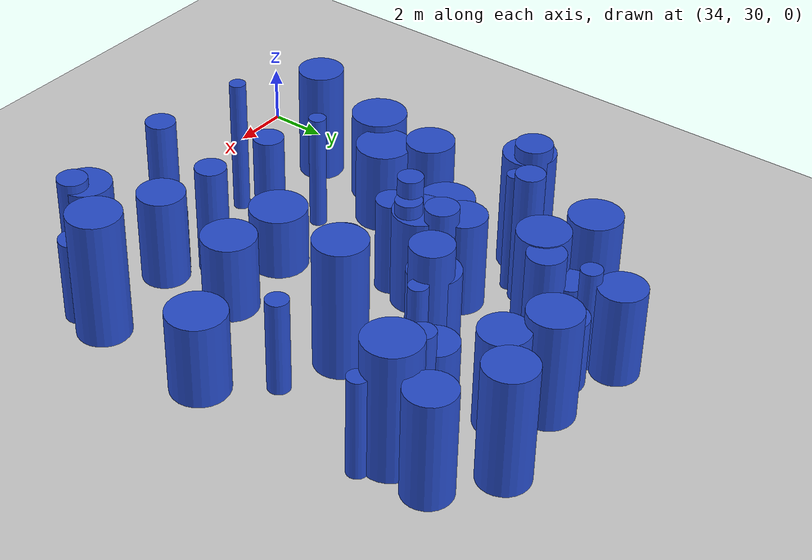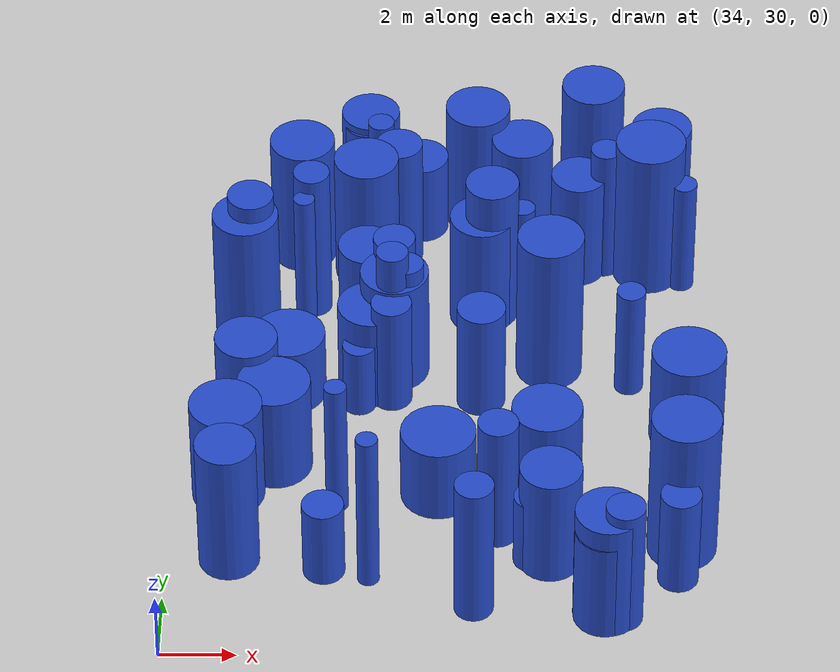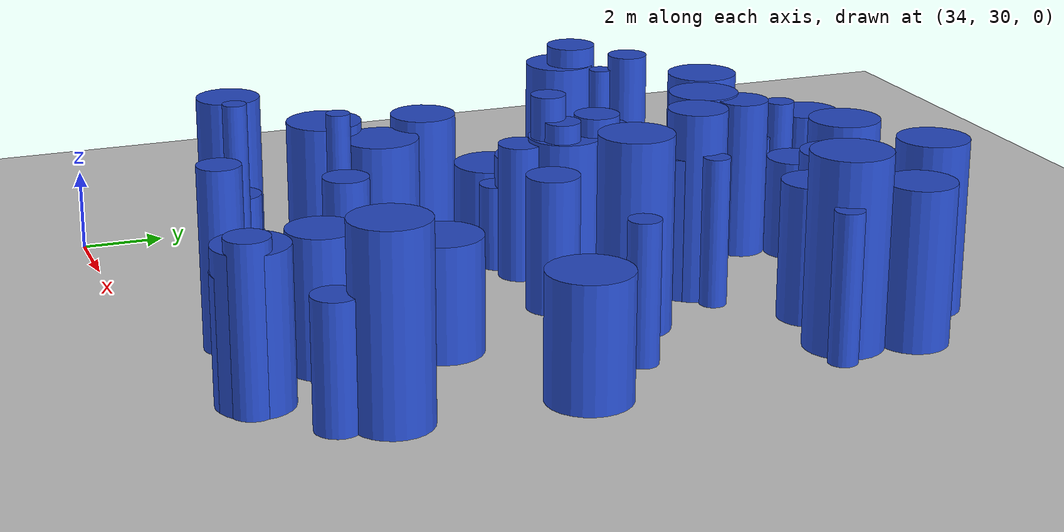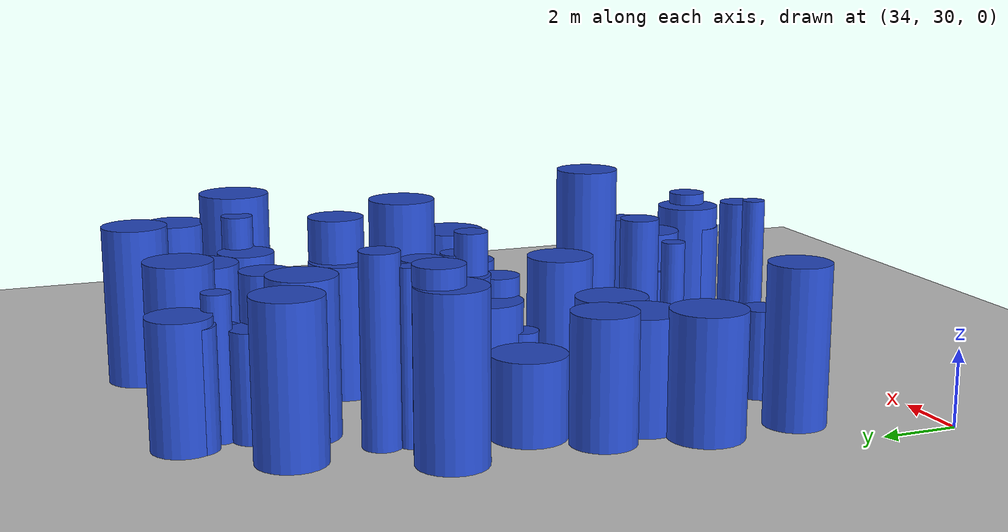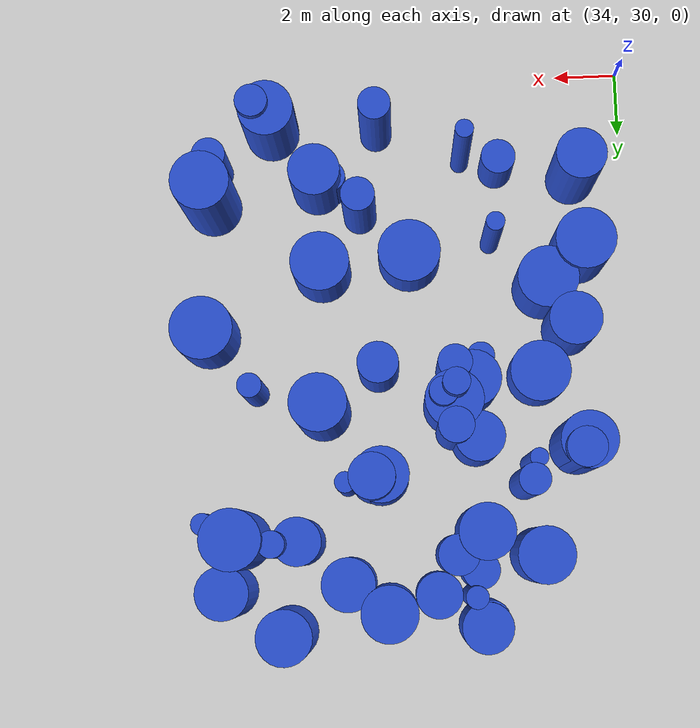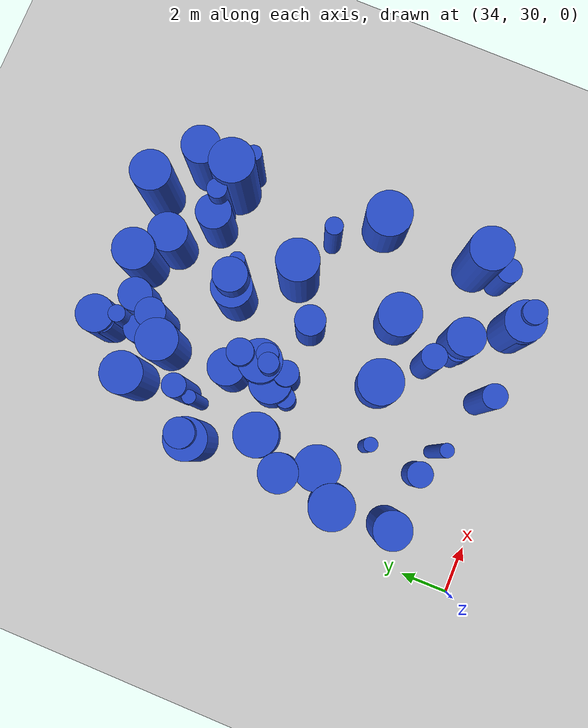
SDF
<sdf version="1.6">
 <world name="default">
  <model name="ground_plane">
   <static>1</static>
   <link name="link">
    <collision name="collision">
     <geometry><plane><normal>0 0 1</normal><size>100 100</size></plane></geometry>
     <surface><friction><ode><mu>100</mu><mu2>50</mu2></ode></friction></surface>
    </collision>
    <visual name="visual">
     <cast_shadows>0</cast_shadows>
     <geometry><plane><normal>0 0 1</normal><size>100 100</size></plane></geometry>
     <material>
      <script><uri>file://media/materials/scripts/gazebo.material</uri><name>Gazebo/Grey</name></script>
     </material>
    </visual>
   </link>
  </model>
  <model name="4">
   <static>0</static>
   <link name="link">
    <inertial>
     <mass>2</mass>
     <inertia>
      <ixx>0.982627</ixx>
      <ixy>0</ixy>
      <ixz>0</ixz>
      <iyy>0.982627</iyy>
      <iyz>0</iyz>
      <izz>0.248096</izz>
     </inertia>
    </inertial>
    <collision name="collision">
     <geometry><cylinder><length>2.26969</length><radius>0.498092</radius></cylinder></geometry>
     <surface><contact><collide_without_contact>1</collide_without_contact></contact></surface>
    </collision>
    <visual name="visual">
     <geometry><cylinder><length>2.26969</length><radius>0.498092</radius></cylinder></geometry>
     <material>
      <script><uri>file://media/materials/scripts/gazebo.material</uri><name>Gazebo/Blue</name></script>
     </material>
    </visual>
    <gravity>0</gravity>
   </link>
   <pose>43.5504 33.5469 1.13484 0 -0 0</pose>
  </model>
  <model name="7">
   <static>0</static>
   <link name="link">
    <inertial>
     <mass>2</mass>
     <inertia><ixx>3.06232</ixx><ixy>0</ixy><ixz>0</ixz><iyy>3.06232</iyy><iyz>0</iyz><izz>0.178257</izz></inertia>
    </inertial>
    <collision name="collision">
     <geometry><cylinder><length>4.22364</length><radius>0.422205</radius></cylinder></geometry>
     <surface><contact><collide_without_contact>1</collide_without_contact></contact></surface>
    </collision>
    <visual name="visual">
     <geometry><cylinder><length>4.22364</length><radius>0.422205</radius></cylinder></geometry>
     <material>
      <script><uri>file://media/materials/scripts/gazebo.material</uri><name>Gazebo/Blue</name></script>
     </material>
    </visual>
    <gravity>0</gravity>
   </link>
   <pose>45.6162 45.1561 2.11182 0 -0 0</pose>
  </model>
  <model name="19">
   <static>0</static>
   <link name="link">
    <inertial>
     <mass>2</mass>
     <inertia><ixx>1.7024</ixx><ixy>0</ixy><ixz>0</ixz><iyy>1.7024</iyy><iyz>0</iyz><izz>0.35835</izz></inertia>
    </inertial>
    <collision name="collision">
     <geometry><cylinder><length>3.02313</length><radius>0.598624</radius></cylinder></geometry>
     <surface><contact><collide_without_contact>1</collide_without_contact></contact></surface>
    </collision>
    <visual name="visual">
     <geometry><cylinder><length>3.02313</length><radius>0.598624</radius></cylinder></geometry>
     <material>
      <script><uri>file://media/materials/scripts/gazebo.material</uri><name>Gazebo/Blue</name></script>
     </material>
    </visual>
    <gravity>0</gravity>
   </link>
   <pose>39.0269 47.6818 1.51157 0 -0 0</pose>
  </model>
  <model name="32">
   <static>0</static>
   <link name="link">
    <inertial>
     <mass>2</mass>
     <inertia><ixx>1.31359</ixx><ixy>0</ixy><ixz>0</ixz><iyy>1.31359</iyy><iyz>0</iyz><izz>0.534164</izz></inertia>
    </inertial>
    <collision name="collision">
     <geometry><cylinder><length>2.5058</length><radius>0.730865</radius></cylinder></geometry>
     <surface><contact><collide_without_contact>1</collide_without_contact></contact></surface>
    </collision>
    <visual name="visual">
     <geometry><cylinder><length>2.5058</length><radius>0.730865</radius></cylinder></geometry>
     <material>
      <script><uri>file://media/materials/scripts/gazebo.material</uri><name>Gazebo/Blue</name></script>
     </material>
    </visual>
    <gravity>0</gravity>
   </link>
   <pose>40.5633 46.9048 1.2529 0 -0 0</pose>
  </model>
  <model name="38">
   <static>0</static>
   <link name="link">
    <inertial>
     <mass>2</mass>
     <inertia><ixx>1.64312</ixx><ixy>0</ixy><ixz>0</ixz><iyy>1.64312</iyy><iyz>0</iyz><izz>0.283464</izz></inertia>
    </inertial>
    <collision name="collision">
     <geometry><cylinder><length>3.00139</length><radius>0.532413</radius></cylinder></geometry>
     <surface><contact><collide_without_contact>1</collide_without_contact></contact></surface>
    </collision>
    <visual name="visual">
     <geometry><cylinder><length>3.00139</length><radius>0.532413</radius></cylinder></geometry>
     <material>
      <script><uri>file://media/materials/scripts/gazebo.material</uri><name>Gazebo/Blue</name></script>
     </material>
    </visual>
    <gravity>0</gravity>
   </link>
   <pose>47.3246 32.8651 1.50069 0 -0 0</pose>
  </model>
  <model name="45">
   <static>0</static>
   <link name="link">
    <inertial>
     <mass>2</mass>
     <inertia><ixx>2.26148</ixx><ixy>0</ixy><ixz>0</ixz><iyy>2.26148</iyy><iyz>0</iyz><izz>0.620996</izz></inertia>
    </inertial>
    <collision name="collision">
     <geometry><cylinder><length>3.42138</length><radius>0.788033</radius></cylinder></geometry>
     <surface><contact><collide_without_contact>1</collide_without_contact></contact></surface>
    </collision>
    <visual name="visual">
     <geometry><cylinder><length>3.42138</length><radius>0.788033</radius></cylinder></geometry>
     <material>
      <script><uri>file://media/materials/scripts/gazebo.material</uri><name>Gazebo/Blue</name></script>
     </material>
    </visual>
    <gravity>0</gravity>
   </link>
   <pose>39.1491 42.0776 1.71069 0 -0 0</pose>
  </model>
  <model name="56">
   <static>0</static>
   <link name="link">
    <inertial>
     <mass>2</mass>
     <inertia><ixx>1.44199</ixx><ixy>0</ixy><ixz>0</ixz><iyy>1.44199</iyy><iyz>0</iyz><izz>0.351917</izz></inertia>
    </inertial>
    <collision name="collision">
     <geometry><cylinder><length>2.75612</length><radius>0.593226</radius></cylinder></geometry>
     <surface><contact><collide_without_contact>1</collide_without_contact></contact></surface>
    </collision>
    <visual name="visual">
     <geometry><cylinder><length>2.75612</length><radius>0.593226</radius></cylinder></geometry>
     <material>
      <script><uri>file://media/materials/scripts/gazebo.material</uri><name>Gazebo/Blue</name></script>
     </material>
    </visual>
    <gravity>0</gravity>
   </link>
   <pose>39.2574 46.1786 1.37806 0 -0 0</pose>
  </model>
  <model name="62">
   <static>0</static>
   <link name="link">
    <inertial>
     <mass>2</mass>
     <inertia><ixx>1.99738</ixx><ixy>0</ixy><ixz>0</ixz><iyy>1.99738</iyy><iyz>0</iyz><izz>0.149019</izz></inertia>
    </inertial>
    <collision name="collision">
     <geometry><cylinder><length>3.39665</length><radius>0.38603</radius></cylinder></geometry>
     <surface><contact><collide_without_contact>1</collide_without_contact></contact></surface>
    </collision>
    <visual name="visual">
     <geometry><cylinder><length>3.39665</length><radius>0.38603</radius></cylinder></geometry>
     <material>
      <script><uri>file://media/materials/scripts/gazebo.material</uri><name>Gazebo/Blue</name></script>
     </material>
    </visual>
    <gravity>0</gravity>
   </link>
   <pose>46.2021 40.252 1.69832 0 -0 0</pose>
  </model>
  <model name="64">
   <static>0</static>
   <link name="link">
    <inertial>
     <mass>2</mass>
     <inertia><ixx>3.05171</ixx><ixy>0</ixy><ixz>0</ixz><iyy>3.05171</iyy><iyz>0</iyz><izz>0.774554</izz></inertia>
    </inertial>
    <collision name="collision">
     <geometry><cylinder><length>3.99833</length><radius>0.880087</radius></cylinder></geometry>
     <surface><contact><collide_without_contact>1</collide_without_contact></contact></surface>
    </collision>
    <visual name="visual">
     <geometry><cylinder><length>3.99833</length><radius>0.880087</radius></cylinder></geometry>
     <material>
      <script><uri>file://media/materials/scripts/gazebo.material</uri><name>Gazebo/Blue</name></script>
     </material>
    </visual>
    <gravity>0</gravity>
   </link>
   <pose>39.071 44.9999 1.99916 0 -0 0</pose>
  </model>
  <model name="80">
   <static>0</static>
   <link name="link">
    <inertial>
     <mass>2</mass>
     <inertia><ixx>3.9002</ixx><ixy>0</ixy><ixz>0</ixz><iyy>3.9002</iyy><iyz>0</iyz><izz>0.386485</izz></inertia>
    </inertial>
    <collision name="collision">
     <geometry><cylinder><length>4.71611</length><radius>0.621679</radius></cylinder></geometry>
     <surface><contact><collide_without_contact>1</collide_without_contact></contact></surface>
    </collision>
    <visual name="visual">
     <geometry><cylinder><length>4.71611</length><radius>0.621679</radius></cylinder></geometry>
     <material>
      <script><uri>file://media/materials/scripts/gazebo.material</uri><name>Gazebo/Blue</name></script>
     </material>
    </visual>
    <gravity>0</gravity>
   </link>
   <pose>36.0171 42.5943 2.35806 0 -0 0</pose>
  </model>
  <model name="84">
   <static>0</static>
   <link name="link">
    <inertial>
     <mass>2</mass>
     <inertia><ixx>1.19616</ixx><ixy>0</ixy><ixz>0</ixz><iyy>1.19616</iyy><iyz>0</iyz><izz>0.933302</izz></inertia>
    </inertial>
    <collision name="collision">
     <geometry><cylinder><length>2.09214</length><radius>0.966076</radius></cylinder></geometry>
     <surface><contact><collide_without_contact>1</collide_without_contact></contact></surface>
    </collision>
    <visual name="visual">
     <geometry><cylinder><length>2.09214</length><radius>0.966076</radius></cylinder></geometry>
     <material>
      <script><uri>file://media/materials/scripts/gazebo.material</uri><name>Gazebo/Blue</name></script>
     </material>
    </visual>
    <gravity>0</gravity>
   </link>
   <pose>37.0807 40.0005 1.04607 0 -0 0</pose>
  </model>
  <model name="86">
   <static>0</static>
   <link name="link">
    <inertial>
     <mass>2</mass>
     <inertia><ixx>3.85061</ixx><ixy>0</ixy><ixz>0</ixz><iyy>3.85061</iyy><iyz>0</iyz><izz>0.518978</izz></inertia>
    </inertial>
    <collision name="collision">
     <geometry><cylinder><length>4.64185</length><radius>0.720401</radius></cylinder></geometry>
     <surface><contact><collide_without_contact>1</collide_without_contact></contact></surface>
    </collision>
    <visual name="visual">
     <geometry><cylinder><length>4.64185</length><radius>0.720401</radius></cylinder></geometry>
     <material>
      <script><uri>file://media/materials/scripts/gazebo.material</uri><name>Gazebo/Blue</name></script>
     </material>
    </visual>
    <gravity>0</gravity>
   </link>
   <pose>42.5024 43.2263 2.32092 0 -0 0</pose>
  </model>
  <model name="98">
   <static>0</static>
   <link name="link">
    <inertial>
     <mass>2</mass>
     <inertia><ixx>1.86574</ixx><ixy>0</ixy><ixz>0</ixz><iyy>1.86574</iyy><iyz>0</iyz><izz>0.667431</izz></inertia>
    </inertial>
    <collision name="collision">
     <geometry><cylinder><length>3.03186</length><radius>0.816965</radius></cylinder></geometry>
     <surface><contact><collide_without_contact>1</collide_without_contact></contact></surface>
    </collision>
    <visual name="visual">
     <geometry><cylinder><length>3.03186</length><radius>0.816965</radius></cylinder></geometry>
     <material>
      <script><uri>file://media/materials/scripts/gazebo.material</uri><name>Gazebo/Blue</name></script>
     </material>
    </visual>
    <gravity>0</gravity>
   </link>
   <pose>45.397 31.5197 1.51593 0 -0 0</pose>
  </model>
  <model name="106">
   <static>0</static>
   <link name="link">
    <inertial>
     <mass>2</mass>
     <inertia><ixx>2.19954</ixx><ixy>0</ixy><ixz>0</ixz><iyy>2.19954</iyy><iyz>0</iyz><izz>0.11993</izz></inertia>
    </inertial>
    <collision name="collision">
     <geometry><cylinder><length>3.58294</length><radius>0.346309</radius></cylinder></geometry>
     <surface><contact><collide_without_contact>1</collide_without_contact></contact></surface>
    </collision>
    <visual name="visual">
     <geometry><cylinder><length>3.58294</length><radius>0.346309</radius></cylinder></geometry>
     <material>
      <script><uri>file://media/materials/scripts/gazebo.material</uri><name>Gazebo/Blue</name></script>
     </material>
    </visual>
    <gravity>0</gravity>
   </link>
   <pose>47.7338 44.4726 1.79147 0 -0 0</pose>
  </model>
  <model name="110">
   <static>0</static>
   <link name="link">
    <inertial>
     <mass>2</mass>
     <inertia><ixx>2.75029</ixx><ixy>0</ixy><ixz>0</ixz><iyy>2.75029</iyy><iyz>0</iyz><izz>0.287407</izz></inertia>
    </inertial>
    <collision name="collision">
     <geometry><cylinder><length>3.95468</length><radius>0.536104</radius></cylinder></geometry>
     <surface><contact><collide_without_contact>1</collide_without_contact></contact></surface>
    </collision>
    <visual name="visual">
     <geometry><cylinder><length>3.95468</length><radius>0.536104</radius></cylinder></geometry>
     <material>
      <script><uri>file://media/materials/scripts/gazebo.material</uri><name>Gazebo/Blue</name></script>
     </material>
    </visual>
    <gravity>0</gravity>
   </link>
   <pose>42.6495 34.504 1.97734 0 -0 0</pose>
  </model>
  <model name="114">
   <static>0</static>
   <link name="link">
    <inertial>
     <mass>2</mass>
     <inertia><ixx>2.29436</ixx><ixy>0</ixy><ixz>0</ixz><iyy>2.29436</iyy><iyz>0</iyz><izz>0.108501</izz></inertia>
    </inertial>
    <collision name="collision">
     <geometry><cylinder><length>3.66615</length><radius>0.329394</radius></cylinder></geometry>
     <surface><contact><collide_without_contact>1</collide_without_contact></contact></surface>
    </collision>
    <visual name="visual">
     <geometry><cylinder><length>3.66615</length><radius>0.329394</radius></cylinder></geometry>
     <material>
      <script><uri>file://media/materials/scripts/gazebo.material</uri><name>Gazebo/Blue</name></script>
     </material>
    </visual>
    <gravity>0</gravity>
   </link>
   <pose>43.338 43.3503 1.83308 0 -0 0</pose>
  </model>
  <model name="128">
   <static>0</static>
   <link name="link">
    <inertial>
     <mass>2</mass>
     <inertia><ixx>3.56373</ixx><ixy>0</ixy><ixz>0</ixz><iyy>3.56373</iyy><iyz>0</iyz><izz>0.183806</izz></inertia>
    </inertial>
    <collision name="collision">
     <geometry><cylinder><length>4.56409</length><radius>0.428726</radius></cylinder></geometry>
     <surface><contact><collide_without_contact>1</collide_without_contact></contact></surface>
    </collision>
    <visual name="visual">
     <geometry><cylinder><length>4.56409</length><radius>0.428726</radius></cylinder></geometry>
     <material>
      <script><uri>file://media/materials/scripts/gazebo.material</uri><name>Gazebo/Blue</name></script>
     </material>
    </visual>
    <gravity>0</gravity>
   </link>
   <pose>39.8452 40.467 2.28205 0 -0 0</pose>
  </model>
  <model name="130">
   <static>0</static>
   <link name="link">
    <inertial>
     <mass>2</mass>
     <inertia><ixx>2.81294</ixx><ixy>0</ixy><ixz>0</ixz><iyy>2.81294</iyy><iyz>0</iyz><izz>0.682512</izz></inertia>
    </inertial>
    <collision name="collision">
     <geometry><cylinder><length>3.85099</length><radius>0.826143</radius></cylinder></geometry>
     <surface><contact><collide_without_contact>1</collide_without_contact></contact></surface>
    </collision>
    <visual name="visual">
     <geometry><cylinder><length>3.85099</length><radius>0.826143</radius></cylinder></geometry>
     <material>
      <script><uri>file://media/materials/scripts/gazebo.material</uri><name>Gazebo/Blue</name></script>
     </material>
    </visual>
    <gravity>0</gravity>
   </link>
   <pose>47.1678 46.577 1.92549 0 -0 0</pose>
  </model>
  <model name="141">
   <static>0</static>
   <link name="link">
    <inertial>
     <mass>2</mass>
     <inertia><ixx>3.32043</ixx><ixy>0</ixy><ixz>0</ixz><iyy>3.32043</iyy><iyz>0</iyz><izz>0.743493</izz></inertia>
    </inertial>
    <collision name="collision">
     <geometry><cylinder><length>4.2062</length><radius>0.86226</radius></cylinder></geometry>
     <surface><contact><collide_without_contact>1</collide_without_contact></contact></surface>
    </collision>
    <visual name="visual">
     <geometry><cylinder><length>4.2062</length><radius>0.86226</radius></cylinder></geometry>
     <material>
      <script><uri>file://media/materials/scripts/gazebo.material</uri><name>Gazebo/Blue</name></script>
     </material>
    </visual>
    <gravity>0</gravity>
   </link>
   <pose>45.3041 47.9549 2.1031 0 -0 0</pose>
  </model>
  <model name="155">
   <static>0</static>
   <link name="link">
    <inertial>
     <mass>2</mass>
     <inertia><ixx>2.14576</ixx><ixy>0</ixy><ixz>0</ixz><iyy>2.14576</iyy><iyz>0</iyz><izz>0.670483</izz></inertia>
    </inertial>
    <collision name="collision">
     <geometry><cylinder><length>3.29592</length><radius>0.81883</radius></cylinder></geometry>
     <surface><contact><collide_without_contact>1</collide_without_contact></contact></surface>
    </collision>
    <visual name="visual">
     <geometry><cylinder><length>3.29592</length><radius>0.81883</radius></cylinder></geometry>
     <material>
      <script><uri>file://media/materials/scripts/gazebo.material</uri><name>Gazebo/Blue</name></script>
     </material>
    </visual>
    <gravity>0</gravity>
   </link>
   <pose>44.0083 33.5307 1.64796 0 -0 0</pose>
  </model>
  <model name="160">
   <static>0</static>
   <link name="link">
    <inertial>
     <mass>2</mass>
     <inertia><ixx>2.44797</ixx><ixy>0</ixy><ixz>0</ixz><iyy>2.44797</iyy><iyz>0</iyz><izz>0.847195</izz></inertia>
    </inertial>
    <collision name="collision">
     <geometry><cylinder><length>3.48514</length><radius>0.920432</radius></cylinder></geometry>
     <surface><contact><collide_without_contact>1</collide_without_contact></contact></surface>
    </collision>
    <visual name="visual">
     <geometry><cylinder><length>3.48514</length><radius>0.920432</radius></cylinder></geometry>
     <material>
      <script><uri>file://media/materials/scripts/gazebo.material</uri><name>Gazebo/Blue</name></script>
     </material>
    </visual>
    <gravity>0</gravity>
   </link>
   <pose>39.8909 40.9021 1.74257 0 -0 0</pose>
  </model>
  <model name="188">
   <static>0</static>
   <link name="link">
    <inertial>
     <mass>2</mass>
     <inertia><ixx>3.04092</ixx><ixy>0</ixy><ixz>0</ixz><iyy>3.04092</iyy><iyz>0</iyz><izz>0.786002</izz></inertia>
    </inertial>
    <collision name="collision">
     <geometry><cylinder><length>3.98592</length><radius>0.886567</radius></cylinder></geometry>
     <surface><contact><collide_without_contact>1</collide_without_contact></contact></surface>
    </collision>
    <visual name="visual">
     <geometry><cylinder><length>3.98592</length><radius>0.886567</radius></cylinder></geometry>
     <material>
      <script><uri>file://media/materials/scripts/gazebo.material</uri><name>Gazebo/Blue</name></script>
     </material>
    </visual>
    <gravity>0</gravity>
   </link>
   <pose>37.3091 45.7782 1.99296 0 -0 0</pose>
  </model>
  <model name="189">
   <static>0</static>
   <link name="link">
    <inertial>
     <mass>2</mass>
     <inertia><ixx>2.71953</ixx><ixy>0</ixy><ixz>0</ixz><iyy>2.71953</iyy><iyz>0</iyz><izz>0.207124</izz></inertia>
    </inertial>
    <collision name="collision">
     <geometry><cylinder><length>3.96179</length><radius>0.455108</radius></cylinder></geometry>
     <surface><contact><collide_without_contact>1</collide_without_contact></contact></surface>
    </collision>
    <visual name="visual">
     <geometry><cylinder><length>3.96179</length><radius>0.455108</radius></cylinder></geometry>
     <material>
      <script><uri>file://media/materials/scripts/gazebo.material</uri><name>Gazebo/Blue</name></script>
     </material>
    </visual>
    <gravity>0</gravity>
   </link>
   <pose>40.2209 40.6926 1.9809 0 -0 0</pose>
  </model>
  <model name="212">
   <static>0</static>
   <link name="link">
    <inertial>
     <mass>2</mass>
     <inertia><ixx>2.06459</ixx><ixy>0</ixy><ixz>0</ixz><iyy>2.06459</iyy><iyz>0</iyz><izz>0.294877</izz></inertia>
    </inertial>
    <collision name="collision">
     <geometry><cylinder><length>3.3916</length><radius>0.543026</radius></cylinder></geometry>
     <surface><contact><collide_without_contact>1</collide_without_contact></contact></surface>
    </collision>
    <visual name="visual">
     <geometry><cylinder><length>3.3916</length><radius>0.543026</radius></cylinder></geometry>
     <material>
      <script><uri>file://media/materials/scripts/gazebo.material</uri><name>Gazebo/Blue</name></script>
     </material>
    </visual>
    <gravity>0</gravity>
   </link>
   <pose>39.8224 39.7475 1.6958 0 -0 0</pose>
  </model>
  <model name="217">
   <static>0</static>
   <link name="link">
    <inertial>
     <mass>2</mass>
     <inertia><ixx>1.95959</ixx><ixy>0</ixy><ixz>0</ixz><iyy>1.95959</iyy><iyz>0</iyz><izz>0.990293</izz></inertia>
    </inertial>
    <collision name="collision">
     <geometry><cylinder><length>2.96423</length><radius>0.995135</radius></cylinder></geometry>
     <surface><contact><collide_without_contact>1</collide_without_contact></contact></surface>
    </collision>
    <visual name="visual">
     <geometry><cylinder><length>2.96423</length><radius>0.995135</radius></cylinder></geometry>
     <material>
      <script><uri>file://media/materials/scripts/gazebo.material</uri><name>Gazebo/Blue</name></script>
     </material>
    </visual>
    <gravity>0</gravity>
   </link>
   <pose>47.697 38.3504 1.48211 0 -0 0</pose>
  </model>
  <model name="218">
   <static>0</static>
   <link name="link">
    <inertial>
     <mass>2</mass>
     <inertia><ixx>2.73257</ixx><ixy>0</ixy><ixz>0</ixz><iyy>2.73257</iyy><iyz>0</iyz><izz>0.265062</izz></inertia>
    </inertial>
    <collision name="collision">
     <geometry><cylinder><length>3.94971</length><radius>0.514842</radius></cylinder></geometry>
     <surface><contact><collide_without_contact>1</collide_without_contact></contact></surface>
    </collision>
    <visual name="visual">
     <geometry><cylinder><length>3.94971</length><radius>0.514842</radius></cylinder></geometry>
     <material>
      <script><uri>file://media/materials/scripts/gazebo.material</uri><name>Gazebo/Blue</name></script>
     </material>
    </visual>
    <gravity>0</gravity>
   </link>
   <pose>45.8644 31.4262 1.97486 0 -0 0</pose>
  </model>
  <model name="224">
   <static>0</static>
   <link name="link">
    <inertial>
     <mass>2</mass>
     <inertia><ixx>2.1143</ixx><ixy>0</ixy><ixz>0</ixz><iyy>2.1143</iyy><iyz>0</iyz><izz>0.699634</izz></inertia>
    </inertial>
    <collision name="collision">
     <geometry><cylinder><length>3.25375</length><radius>0.836441</radius></cylinder></geometry>
     <surface><contact><collide_without_contact>1</collide_without_contact></contact></surface>
    </collision>
    <visual name="visual">
     <geometry><cylinder><length>3.25375</length><radius>0.836441</radius></cylinder></geometry>
     <material>
      <script><uri>file://media/materials/scripts/gazebo.material</uri><name>Gazebo/Blue</name></script>
     </material>
    </visual>
    <gravity>0</gravity>
   </link>
   <pose>36.009 38.5127 1.62688 0 -0 0</pose>
  </model>
  <model name="251">
   <static>0</static>
   <link name="link">
    <inertial>
     <mass>2</mass>
     <inertia><ixx>2.45021</ixx><ixy>0</ixy><ixz>0</ixz><iyy>2.45021</iyy><iyz>0</iyz><izz>0.767887</izz></inertia>
    </inertial>
    <collision name="collision">
     <geometry><cylinder><length>3.52102</length><radius>0.876292</radius></cylinder></geometry>
     <surface><contact><collide_without_contact>1</collide_without_contact></contact></surface>
    </collision>
    <visual name="visual">
     <geometry><cylinder><length>3.52102</length><radius>0.876292</radius></cylinder></geometry>
     <material>
      <script><uri>file://media/materials/scripts/gazebo.material</uri><name>Gazebo/Blue</name></script>
     </material>
    </visual>
    <gravity>0</gravity>
   </link>
   <pose>42.2374 43.146 1.76051 0 -0 0</pose>
  </model>
  <model name="258">
   <static>0</static>
   <link name="link">
    <inertial>
     <mass>2</mass>
     <inertia><ixx>1.81375</ixx><ixy>0</ixy><ixz>0</ixz><iyy>1.81375</iyy><iyz>0</iyz><izz>0.805404</izz></inertia>
    </inertial>
    <collision name="collision">
     <geometry><cylinder><length>2.90969</length><radius>0.897443</radius></cylinder></geometry>
     <surface><contact><collide_without_contact>1</collide_without_contact></contact></surface>
    </collision>
    <visual name="visual">
     <geometry><cylinder><length>2.90969</length><radius>0.897443</radius></cylinder></geometry>
     <material>
      <script><uri>file://media/materials/scripts/gazebo.material</uri><name>Gazebo/Blue</name></script>
     </material>
    </visual>
    <gravity>0</gravity>
   </link>
   <pose>39.2709 40.2366 1.45484 0 -0 0</pose>
  </model>
  <model name="259">
   <static>0</static>
   <link name="link">
    <inertial>
     <mass>2</mass>
     <inertia><ixx>3.1102</ixx><ixy>0</ixy><ixz>0</ixz><iyy>3.1102</iyy><iyz>0</iyz><izz>0.630883</izz></inertia>
    </inertial>
    <collision name="collision">
     <geometry><cylinder><length>4.09494</length><radius>0.794282</radius></cylinder></geometry>
     <surface><contact><collide_without_contact>1</collide_without_contact></contact></surface>
    </collision>
    <visual name="visual">
     <geometry><cylinder><length>4.09494</length><radius>0.794282</radius></cylinder></geometry>
     <material>
      <script><uri>file://media/materials/scripts/gazebo.material</uri><name>Gazebo/Blue</name></script>
     </material>
    </visual>
    <gravity>0</gravity>
   </link>
   <pose>35.6799 33.5083 2.04747 0 -0 0</pose>
  </model>
  <model name="263">
   <static>0</static>
   <link name="link">
    <inertial>
     <mass>2</mass>
     <inertia>
      <ixx>2.98518</ixx>
      <ixy>0</ixy>
      <ixz>0</ixz>
      <iyy>2.98518</iyy>
      <iyz>0</iyz>
      <izz>0.0874013</izz>
     </inertia>
    </inertial>
    <collision name="collision">
     <geometry><cylinder><length>4.20106</length><radius>0.295637</radius></cylinder></geometry>
     <surface><contact><collide_without_contact>1</collide_without_contact></contact></surface>
    </collision>
    <visual name="visual">
     <geometry><cylinder><length>4.20106</length><radius>0.295637</radius></cylinder></geometry>
     <material>
      <script><uri>file://media/materials/scripts/gazebo.material</uri><name>Gazebo/Blue</name></script>
     </material>
    </visual>
    <gravity>0</gravity>
   </link>
   <pose>38.4391 35.5606 2.10053 0 -0 0</pose>
  </model>
  <model name="269">
   <static>0</static>
   <link name="link">
    <inertial>
     <mass>2</mass>
     <inertia><ixx>3.28833</ixx><ixy>0</ixy><ixz>0</ixz><iyy>3.28833</iyy><iyz>0</iyz><izz>0.263607</izz></inertia>
    </inertial>
    <collision name="collision">
     <geometry><cylinder><length>4.35192</length><radius>0.513427</radius></cylinder></geometry>
     <surface><contact><collide_without_contact>1</collide_without_contact></contact></surface>
    </collision>
    <visual name="visual">
     <geometry><cylinder><length>4.35192</length><radius>0.513427</radius></cylinder></geometry>
     <material>
      <script><uri>file://media/materials/scripts/gazebo.material</uri><name>Gazebo/Blue</name></script>
     </material>
    </visual>
    <gravity>0</gravity>
   </link>
   <pose>42.036 31.7652 2.17596 0 -0 0</pose>
  </model>
  <model name="281">
   <static>0</static>
   <link name="link">
    <inertial>
     <mass>2</mass>
     <inertia><ixx>4.06047</ixx><ixy>0</ixy><ixz>0</ixz><iyy>4.06047</iyy><iyz>0</iyz><izz>0.797601</izz></inertia>
    </inertial>
    <collision name="collision">
     <geometry><cylinder><length>4.68722</length><radius>0.893085</radius></cylinder></geometry>
     <surface><contact><collide_without_contact>1</collide_without_contact></contact></surface>
    </collision>
    <visual name="visual">
     <geometry><cylinder><length>4.68722</length><radius>0.893085</radius></cylinder></geometry>
     <material>
      <script><uri>file://media/materials/scripts/gazebo.material</uri><name>Gazebo/Blue</name></script>
     </material>
    </visual>
    <gravity>0</gravity>
   </link>
   <pose>44.0541 40.9655 2.34361 0 -0 0</pose>
  </model>
  <model name="283">
   <static>0</static>
   <link name="link">
    <inertial>
     <mass>2</mass>
     <inertia><ixx>2.28744</ixx><ixy>0</ixy><ixz>0</ixz><iyy>2.28744</iyy><iyz>0</iyz><izz>0.127832</izz></inertia>
    </inertial>
    <collision name="collision">
     <geometry><cylinder><length>3.65255</length><radius>0.357536</radius></cylinder></geometry>
     <surface><contact><collide_without_contact>1</collide_without_contact></contact></surface>
    </collision>
    <visual name="visual">
     <geometry><cylinder><length>3.65255</length><radius>0.357536</radius></cylinder></geometry>
     <material>
      <script><uri>file://media/materials/scripts/gazebo.material</uri><name>Gazebo/Blue</name></script>
     </material>
    </visual>
    <gravity>0</gravity>
   </link>
   <pose>39.4447 46.9832 1.82628 0 -0 0</pose>
  </model>
  <model name="302">
   <static>0</static>
   <link name="link">
    <inertial>
     <mass>2</mass>
     <inertia><ixx>1.92859</ixx><ixy>0</ixy><ixz>0</ixz><iyy>1.92859</iyy><iyz>0</iyz><izz>0.943552</izz></inertia>
    </inertial>
    <collision name="collision">
     <geometry><cylinder><length>2.9565</length><radius>0.971366</radius></cylinder></geometry>
     <surface><contact><collide_without_contact>1</collide_without_contact></contact></surface>
    </collision>
    <visual name="visual">
     <geometry><cylinder><length>2.9565</length><radius>0.971366</radius></cylinder></geometry>
     <material>
      <script><uri>file://media/materials/scripts/gazebo.material</uri><name>Gazebo/Blue</name></script>
     </material>
    </visual>
    <gravity>0</gravity>
   </link>
   <pose>36.7793 37.1324 1.47825 0 -0 0</pose>
  </model>
  <model name="306">
   <static>0</static>
   <link name="link">
    <inertial>
     <mass>2</mass>
     <inertia><ixx>3.88187</ixx><ixy>0</ixy><ixz>0</ixz><iyy>3.88187</iyy><iyz>0</iyz><izz>0.836926</izz></inertia>
    </inertial>
    <collision name="collision">
     <geometry><cylinder><length>4.55855</length><radius>0.914836</radius></cylinder></geometry>
     <surface><contact><collide_without_contact>1</collide_without_contact></contact></surface>
    </collision>
    <visual name="visual">
     <geometry><cylinder><length>4.55855</length><radius>0.914836</radius></cylinder></geometry>
     <material>
      <script><uri>file://media/materials/scripts/gazebo.material</uri><name>Gazebo/Blue</name></script>
     </material>
    </visual>
    <gravity>0</gravity>
   </link>
   <pose>47.455 34.0225 2.27928 0 -0 0</pose>
  </model>
  <model name="310">
   <static>0</static>
   <link name="link">
    <inertial>
     <mass>2</mass>
     <inertia><ixx>3.89</ixx><ixy>0</ixy><ixz>0</ixz><iyy>3.89</iyy><iyz>0</iyz><izz>0.241955</izz></inertia>
    </inertial>
    <collision name="collision">
     <geometry><cylinder><length>4.75543</length><radius>0.491889</radius></cylinder></geometry>
     <surface><contact><collide_without_contact>1</collide_without_contact></contact></surface>
    </collision>
    <visual name="visual">
     <geometry><cylinder><length>4.75543</length><radius>0.491889</radius></cylinder></geometry>
     <material>
      <script><uri>file://media/materials/scripts/gazebo.material</uri><name>Gazebo/Blue</name></script>
     </material>
    </visual>
    <gravity>0</gravity>
   </link>
   <pose>37.6282 43.506 2.37772 0 -0 0</pose>
  </model>
  <model name="315">
   <static>0</static>
   <link name="link">
    <inertial>
     <mass>2</mass>
     <inertia><ixx>2.76982</ixx><ixy>0</ixy><ixz>0</ixz><iyy>2.76982</iyy><iyz>0</iyz><izz>0.317082</izz></inertia>
    </inertial>
    <collision name="collision">
     <geometry><cylinder><length>3.95824</length><radius>0.5631</radius></cylinder></geometry>
     <surface><contact><collide_without_contact>1</collide_without_contact></contact></surface>
    </collision>
    <visual name="visual">
     <geometry><cylinder><length>3.95824</length><radius>0.5631</radius></cylinder></geometry>
     <material>
      <script><uri>file://media/materials/scripts/gazebo.material</uri><name>Gazebo/Blue</name></script>
     </material>
    </visual>
    <gravity>0</gravity>
   </link>
   <pose>39.8789 41.7374 1.97912 0 -0 0</pose>
  </model>
  <model name="323">
   <static>0</static>
   <link name="link">
    <inertial>
     <mass>2</mass>
     <inertia>
      <ixx>0.964488</ixx>
      <ixy>0</ixy>
      <ixz>0</ixz>
      <iyy>0.964488</iyy>
      <iyz>0</iyz>
      <izz>0.0984897</izz>
     </inertia>
    </inertial>
    <collision name="collision">
     <geometry><cylinder><length>2.34339</length><radius>0.313831</radius></cylinder></geometry>
     <surface><contact><collide_without_contact>1</collide_without_contact></contact></surface>
    </collision>
    <visual name="visual">
     <geometry><cylinder><length>2.34339</length><radius>0.313831</radius></cylinder></geometry>
     <material>
      <script><uri>file://media/materials/scripts/gazebo.material</uri><name>Gazebo/Blue</name></script>
     </material>
    </visual>
    <gravity>0</gravity>
   </link>
   <pose>43.6617 46.6667 1.17169 0 -0 0</pose>
  </model>
  <model name="343">
   <static>0</static>
   <link name="link">
    <inertial>
     <mass>2</mass>
     <inertia><ixx>4.03408</ixx><ixy>0</ixy><ixz>0</ixz><iyy>4.03408</iyy><iyz>0</iyz><izz>0.902145</izz></inertia>
    </inertial>
    <collision name="collision">
     <geometry><cylinder><length>4.6366</length><radius>0.949813</radius></cylinder></geometry>
     <surface><contact><collide_without_contact>1</collide_without_contact></contact></surface>
    </collision>
    <visual name="visual">
     <geometry><cylinder><length>4.6366</length><radius>0.949813</radius></cylinder></geometry>
     <material>
      <script><uri>file://media/materials/scripts/gazebo.material</uri><name>Gazebo/Blue</name></script>
     </material>
    </visual>
    <gravity>0</gravity>
   </link>
   <pose>46.8089 44.9756 2.3183 0 -0 0</pose>
  </model>
  <model name="352">
   <static>0</static>
   <link name="link">
    <inertial>
     <mass>2</mass>
     <inertia><ixx>2.3945</ixx><ixy>0</ixy><ixz>0</ixz><iyy>2.3945</iyy><iyz>0</iyz><izz>0.70294</izz></inertia>
    </inertial>
    <collision name="collision">
     <geometry><cylinder><length>3.50117</length><radius>0.838415</radius></cylinder></geometry>
     <surface><contact><collide_without_contact>1</collide_without_contact></contact></surface>
    </collision>
    <visual name="visual">
     <geometry><cylinder><length>3.50117</length><radius>0.838415</radius></cylinder></geometry>
     <material>
      <script><uri>file://media/materials/scripts/gazebo.material</uri><name>Gazebo/Blue</name></script>
     </material>
    </visual>
    <gravity>0</gravity>
   </link>
   <pose>43.3425 46.4619 1.75059 0 -0 0</pose>
  </model>
  <model name="369">
   <static>0</static>
   <link name="link">
    <inertial>
     <mass>2</mass>
     <inertia>
      <ixx>3.23684</ixx>
      <ixy>0</ixy>
      <ixz>0</ixz>
      <iyy>3.23684</iyy>
      <iyz>0</iyz>
      <izz>0.0816176</izz>
     </inertia>
    </inertial>
    <collision name="collision">
     <geometry><cylinder><length>4.37906</length><radius>0.285688</radius></cylinder></geometry>
     <surface><contact><collide_without_contact>1</collide_without_contact></contact></surface>
    </collision>
    <visual name="visual">
     <geometry><cylinder><length>4.37906</length><radius>0.285688</radius></cylinder></geometry>
     <material>
      <script><uri>file://media/materials/scripts/gazebo.material</uri><name>Gazebo/Blue</name></script>
     </material>
    </visual>
    <gravity>0</gravity>
   </link>
   <pose>37.4427 42.8427 2.18953 0 -0 0</pose>
  </model>
  <model name="371">
   <static>0</static>
   <link name="link">
    <inertial>
     <mass>2</mass>
     <inertia><ixx>2.17946</ixx><ixy>0</ixy><ixz>0</ixz><iyy>2.17946</iyy><iyz>0</iyz><izz>0.578342</izz></inertia>
    </inertial>
    <collision name="collision">
     <geometry><cylinder><length>3.36775</length><radius>0.760488</radius></cylinder></geometry>
     <surface><contact><collide_without_contact>1</collide_without_contact></contact></surface>
    </collision>
    <visual name="visual">
     <geometry><cylinder><length>3.36775</length><radius>0.760488</radius></cylinder></geometry>
     <material>
      <script><uri>file://media/materials/scripts/gazebo.material</uri><name>Gazebo/Blue</name></script>
     </material>
    </visual>
    <gravity>0</gravity>
   </link>
   <pose>44.8867 45.0972 1.68388 0 -0 0</pose>
  </model>
  <model name="373">
   <static>0</static>
   <link name="link">
    <inertial>
     <mass>2</mass>
     <inertia><ixx>1.07108</ixx><ixy>0</ixy><ixz>0</ixz><iyy>1.07108</iyy><iyz>0</iyz><izz>0.302788</izz></inertia>
    </inertial>
    <collision name="collision">
     <geometry><cylinder><length>2.34907</length><radius>0.550261</radius></cylinder></geometry>
     <surface><contact><collide_without_contact>1</collide_without_contact></contact></surface>
    </collision>
    <visual name="visual">
     <geometry><cylinder><length>2.34907</length><radius>0.550261</radius></cylinder></geometry>
     <material>
      <script><uri>file://media/materials/scripts/gazebo.material</uri><name>Gazebo/Blue</name></script>
     </material>
    </visual>
    <gravity>0</gravity>
   </link>
   <pose>38.1505 33.1163 1.17453 0 -0 0</pose>
  </model>
  <model name="386">
   <static>0</static>
   <link name="link">
    <inertial>
     <mass>2</mass>
     <inertia><ixx>2.07107</ixx><ixy>0</ixy><ixz>0</ixz><iyy>2.07107</iyy><iyz>0</iyz><izz>0.640267</izz></inertia>
    </inertial>
    <collision name="collision">
     <geometry><cylinder><length>3.24123</length><radius>0.800167</radius></cylinder></geometry>
     <surface><contact><collide_without_contact>1</collide_without_contact></contact></surface>
    </collision>
    <visual name="visual">
     <geometry><cylinder><length>3.24123</length><radius>0.800167</radius></cylinder></geometry>
     <material>
      <script><uri>file://media/materials/scripts/gazebo.material</uri><name>Gazebo/Blue</name></script>
     </material>
    </visual>
    <gravity>0</gravity>
   </link>
   <pose>39.1374 47.9306 1.62062 0 -0 0</pose>
  </model>
  <model name="388">
   <static>0</static>
   <link name="link">
    <inertial>
     <mass>2</mass>
     <inertia><ixx>3.37178</ixx><ixy>0</ixy><ixz>0</ixz><iyy>3.37178</iyy><iyz>0</iyz><izz>0.791993</izz></inertia>
    </inertial>
    <collision name="collision">
     <geometry><cylinder><length>4.22548</length><radius>0.88994</radius></cylinder></geometry>
     <surface><contact><collide_without_contact>1</collide_without_contact></contact></surface>
    </collision>
    <visual name="visual">
     <geometry><cylinder><length>4.22548</length><radius>0.88994</radius></cylinder></geometry>
     <material>
      <script><uri>file://media/materials/scripts/gazebo.material</uri><name>Gazebo/Blue</name></script>
     </material>
    </visual>
    <gravity>0</gravity>
   </link>
   <pose>35.8724 42.355 2.11274 0 -0 0</pose>
  </model>
  <model name="389">
   <static>0</static>
   <link name="link">
    <inertial>
     <mass>2</mass>
     <inertia>
      <ixx>0.861191</ixx>
      <ixy>0</ixy>
      <ixz>0</ixz>
      <iyy>0.861191</iyy>
      <iyz>0</iyz>
      <izz>0.193361</izz>
     </inertia>
    </inertial>
    <collision name="collision">
     <geometry><cylinder><length>2.14174</length><radius>0.439729</radius></cylinder></geometry>
     <surface><contact><collide_without_contact>1</collide_without_contact></contact></surface>
    </collision>
    <visual name="visual">
     <geometry><cylinder><length>2.14174</length><radius>0.439729</radius></cylinder></geometry>
     <material>
      <script><uri>file://media/materials/scripts/gazebo.material</uri><name>Gazebo/Blue</name></script>
     </material>
    </visual>
    <gravity>0</gravity>
   </link>
   <pose>38.9566 39.4599 1.07087 0 -0 0</pose>
  </model>
  <model name="435">
   <static>0</static>
   <link name="link">
    <inertial>
     <mass>2</mass>
     <inertia>
      <ixx>4.09237</ixx>
      <ixy>0</ixy>
      <ixz>0</ixz>
      <iyy>4.09237</iyy>
      <iyz>0</iyz>
      <izz>0.0825261</izz>
     </inertia>
    </inertial>
    <collision name="collision">
     <geometry><cylinder><length>4.93018</length><radius>0.287274</radius></cylinder></geometry>
     <surface><contact><collide_without_contact>1</collide_without_contact></contact></surface>
    </collision>
    <visual name="visual">
     <geometry><cylinder><length>4.93018</length><radius>0.287274</radius></cylinder></geometry>
     <material>
      <script><uri>file://media/materials/scripts/gazebo.material</uri><name>Gazebo/Blue</name></script>
     </material>
    </visual>
    <gravity>0</gravity>
   </link>
   <pose>39.3103 32.8125 2.46509 0 -0 0</pose>
  </model>
  <model name="436">
   <static>0</static>
   <link name="link">
    <inertial>
     <mass>2</mass>
     <inertia><ixx>2.02694</ixx><ixy>0</ixy><ixz>0</ixz><iyy>2.02694</iyy><iyz>0</iyz><izz>0.424093</izz></inertia>
    </inertial>
    <collision name="collision">
     <geometry><cylinder><length>3.2999</length><radius>0.651224</radius></cylinder></geometry>
     <surface><contact><collide_without_contact>1</collide_without_contact></contact></surface>
    </collision>
    <visual name="visual">
     <geometry><cylinder><length>3.2999</length><radius>0.651224</radius></cylinder></geometry>
     <material>
      <script><uri>file://media/materials/scripts/gazebo.material</uri><name>Gazebo/Blue</name></script>
     </material>
    </visual>
    <gravity>0</gravity>
   </link>
   <pose>42.2158 39.6716 1.64995 0 -0 0</pose>
  </model>
  <model name="437">
   <static>0</static>
   <link name="link">
    <inertial>
     <mass>2</mass>
     <inertia><ixx>2.90433</ixx><ixy>0</ixy><ixz>0</ixz><iyy>2.90433</iyy><iyz>0</iyz><izz>0.784806</izz></inertia>
    </inertial>
    <collision name="collision">
     <geometry><cylinder><length>3.88221</length><radius>0.885893</radius></cylinder></geometry>
     <surface><contact><collide_without_contact>1</collide_without_contact></contact></surface>
    </collision>
    <visual name="visual">
     <geometry><cylinder><length>3.88221</length><radius>0.885893</radius></cylinder></geometry>
     <material>
      <script><uri>file://media/materials/scripts/gazebo.material</uri><name>Gazebo/Blue</name></script>
     </material>
    </visual>
    <gravity>0</gravity>
   </link>
   <pose>42.112 47.3831 1.9411 0 -0 0</pose>
  </model>
  <model name="439">
   <static>0</static>
   <link name="link">
    <inertial>
     <mass>2</mass>
     <inertia><ixx>2.16528</ixx><ixy>0</ixy><ixz>0</ixz><iyy>2.16528</iyy><iyz>0</iyz><izz>0.928368</izz></inertia>
    </inertial>
    <collision name="collision">
     <geometry><cylinder><length>3.19477</length><radius>0.963519</radius></cylinder></geometry>
     <surface><contact><collide_without_contact>1</collide_without_contact></contact></surface>
    </collision>
    <visual name="visual">
     <geometry><cylinder><length>3.19477</length><radius>0.963519</radius></cylinder></geometry>
     <material>
      <script><uri>file://media/materials/scripts/gazebo.material</uri><name>Gazebo/Blue</name></script>
     </material>
    </visual>
    <gravity>0</gravity>
   </link>
   <pose>35.5645 36.0026 1.59739 0 -0 0</pose>
  </model>
  <model name="467">
   <static>0</static>
   <link name="link">
    <inertial>
     <mass>2</mass>
     <inertia><ixx>2.58935</ixx><ixy>0</ixy><ixz>0</ixz><iyy>2.58935</iyy><iyz>0</iyz><izz>0.768478</izz></inertia>
    </inertial>
    <collision name="collision">
     <geometry><cylinder><length>3.6374</length><radius>0.876629</radius></cylinder></geometry>
     <surface><contact><collide_without_contact>1</collide_without_contact></contact></surface>
    </collision>
    <visual name="visual">
     <geometry><cylinder><length>3.6374</length><radius>0.876629</radius></cylinder></geometry>
     <material>
      <script><uri>file://media/materials/scripts/gazebo.material</uri><name>Gazebo/Blue</name></script>
     </material>
    </visual>
    <gravity>0</gravity>
   </link>
   <pose>45.452 31.5959 1.8187 0 -0 0</pose>
  </model>
  <model name="468">
   <static>0</static>
   <link name="link">
    <inertial>
     <mass>2</mass>
     <inertia><ixx>1.72872</ixx><ixy>0</ixy><ixz>0</ixz><iyy>1.72872</iyy><iyz>0</iyz><izz>0.878989</izz></inertia>
    </inertial>
    <collision name="collision">
     <geometry><cylinder><length>2.78125</length><radius>0.937544</radius></cylinder></geometry>
     <surface><contact><collide_without_contact>1</collide_without_contact></contact></surface>
    </collision>
    <visual name="visual">
     <geometry><cylinder><length>2.78125</length><radius>0.937544</radius></cylinder></geometry>
     <material>
      <script><uri>file://media/materials/scripts/gazebo.material</uri><name>Gazebo/Blue</name></script>
     </material>
    </visual>
    <gravity>0</gravity>
   </link>
   <pose>43.9394 36.3522 1.39063 0 -0 0</pose>
  </model>
  <model name="476">
   <static>0</static>
   <link name="link">
    <inertial>
     <mass>2</mass>
     <inertia><ixx>1.32254</ixx><ixy>0</ixy><ixz>0</ixz><iyy>1.32254</iyy><iyz>0</iyz><izz>0.999506</izz></inertia>
    </inertial>
    <collision name="collision">
     <geometry><cylinder><length>2.22187</length><radius>0.999753</radius></cylinder></geometry>
     <surface><contact><collide_without_contact>1</collide_without_contact></contact></surface>
    </collision>
    <visual name="visual">
     <geometry><cylinder><length>2.22187</length><radius>0.999753</radius></cylinder></geometry>
     <material>
      <script><uri>file://media/materials/scripts/gazebo.material</uri><name>Gazebo/Blue</name></script>
     </material>
    </visual>
    <gravity>0</gravity>
   </link>
   <pose>41.0958 36.0229 1.11093 0 -0 0</pose>
  </model>
  <model name="480">
   <static>0</static>
   <link name="link">
    <inertial>
     <mass>2</mass>
     <inertia><ixx>2.81483</ixx><ixy>0</ixy><ixz>0</ixz><iyy>2.81483</iyy><iyz>0</iyz><izz>0.404576</izz></inertia>
    </inertial>
    <collision name="collision">
     <geometry><cylinder><length>3.9592</length><radius>0.636063</radius></cylinder></geometry>
     <surface><contact><collide_without_contact>1</collide_without_contact></contact></surface>
    </collision>
    <visual name="visual">
     <geometry><cylinder><length>3.9592</length><radius>0.636063</radius></cylinder></geometry>
     <material>
      <script><uri>file://media/materials/scripts/gazebo.material</uri><name>Gazebo/Blue</name></script>
     </material>
    </visual>
    <gravity>0</gravity>
   </link>
   <pose>39.9621 45.6771 1.9796 0 -0 0</pose>
  </model>
 </world>
</sdf>
